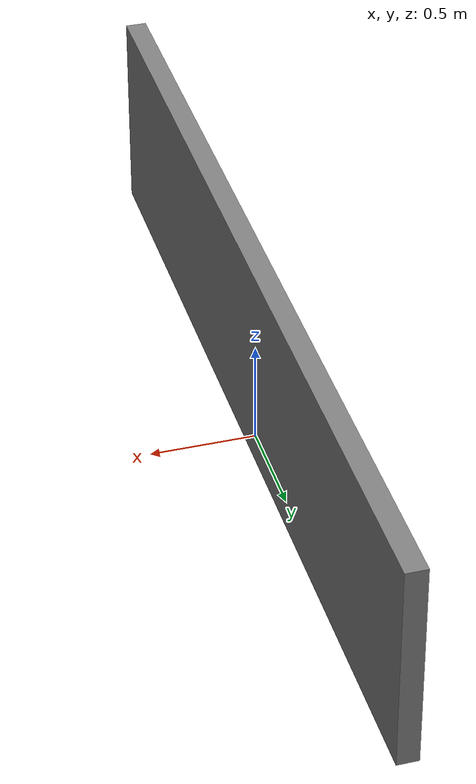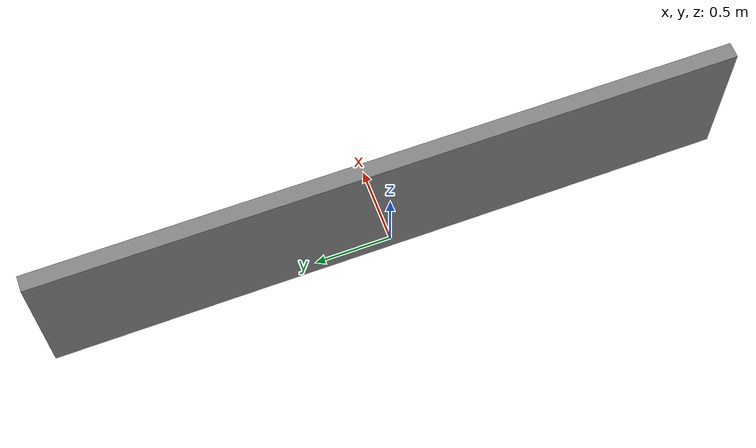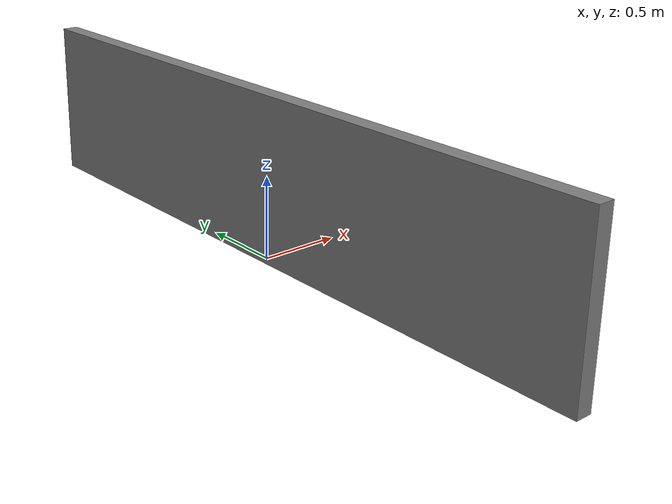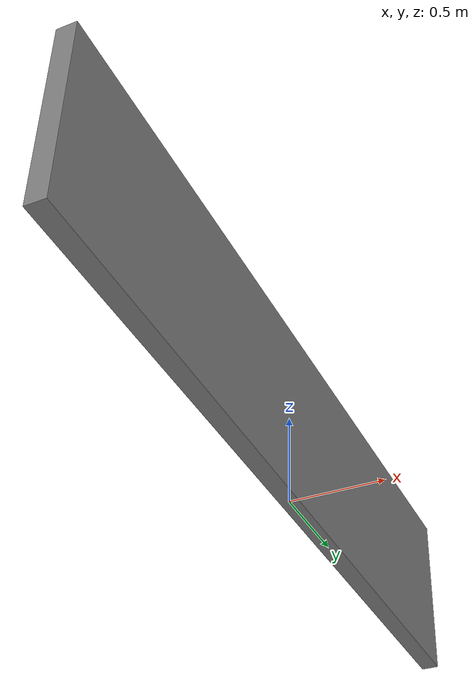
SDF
<?xml version="1.0" ?>
<sdf version="1.5">
  <model name="fence">
    <static>true</static>
    <link name="link">
      <pose>0 0 0.497 0 0 0</pose>
      <collision name="collision">
        <geometry>
          <box>
            <size>0.1 4.4 1</size>
          </box>
        </geometry>
      </collision>
      <visual name="visual">
        <cast_shadows>false</cast_shadows>
        <geometry>
          <box>
            <size>0.1 4.4 1</size>
          </box>
        </geometry>

        <material>
          <ambient>0.8 0.8 0.8 1.0</ambient>
          <diffuse>0.5 0.5 0.5 1.0</diffuse>
          <specular>0.2 0.2 0.2 1.0</specular>

          <pbr>
            <metal>
              <albedo_map>
                model://fence/materials/textures/woodboarding4.jpg
              </albedo_map>
              <emissive_map>
                model://fence/materials/textures/woodboarding4.jpg
              </emissive_map>
            </metal>
          </pbr>
        </material>
      </visual>
    </link>
  </model>
</sdf>
